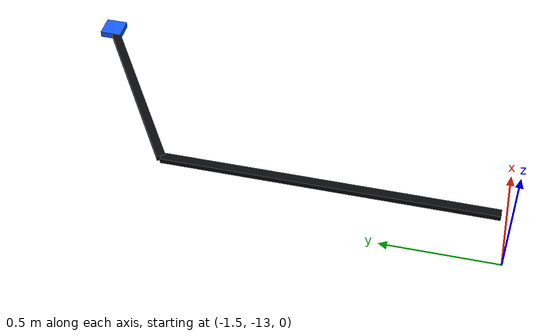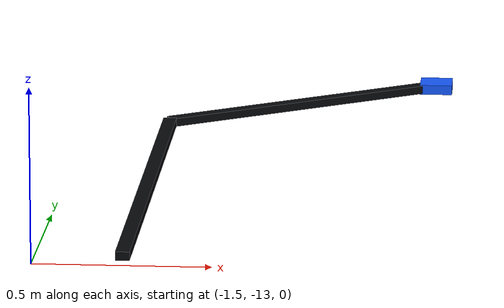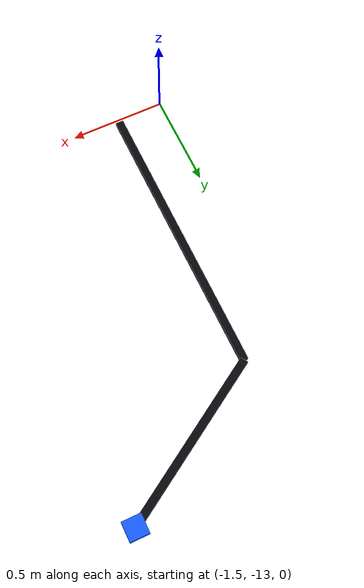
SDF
<sdf version="1.9"><model name="step2_entrance_blue_beacon"><static>true</static><allow_auto_disable>false</allow_auto_disable><pose>-0.45 -11.0 0.02 0 0 0</pose><link name="body"><gravity>false</gravity><inertial><mass>0.03</mass><inertia><ixx>.000016</ixx><iyy>.000016</iyy><izz>.000032</izz><ixy>0</ixy><ixz>0</ixz><iyz>0</iyz></inertia></inertial><visual name="tile"><pose>0 0 0 0 0 0</pose><geometry><box><size>0.1 0.1 0.03</size></box></geometry><material><ambient>0.08 0.35 1.0 1</ambient><diffuse>0.08 0.35 1.0 1</diffuse><emissive>0.052000000000000005 0.22749999999999998 0.65 1</emissive></material><cast_shadows>false</cast_shadows><transparency>0</transparency><visibility_flags>4294967295</visibility_flags></visual><visual name="cable_0"><pose>-0.8 -1.2375000000000007 0.0 0 0 1.5707963267948966</pose><geometry><box><size>1.4749999999999996 0.04 0.025</size></box></geometry><material><ambient>0.025 0.03 0.04 1</ambient><diffuse>0.025 0.03 0.04 1</diffuse><emissive>0.002 0.0024 0.0032 1</emissive></material><cast_shadows>false</cast_shadows><transparency>0</transparency><visibility_flags>4294967295</visibility_flags></visual><visual name="cable_1"><pose>-0.39999999999999997 -0.25 0.0 0 0 0.5585993153435624</pose><geometry><box><size>0.9433981132056605 0.04 0.025</size></box></geometry><material><ambient>0.025 0.03 0.04 1</ambient><diffuse>0.025 0.03 0.04 1</diffuse><emissive>0.002 0.0024 0.0032 1</emissive></material><cast_shadows>false</cast_shadows><transparency>0</transparency><visibility_flags>4294967295</visibility_flags></visual></link><plugin filename="gz-sim-pose-publisher-system" name="gz::sim::systems::PosePublisher"><publish_link_pose>false</publish_link_pose><publish_visual_pose>false</publish_visual_pose><publish_collision_pose>false</publish_collision_pose><publish_sensor_pose>false</publish_sensor_pose><publish_model_pose>true</publish_model_pose><publish_nested_model_pose>true</publish_nested_model_pose><static_publisher>false</static_publisher><use_pose_vector_msg>true</use_pose_vector_msg><update_frequency>10</update_frequency><topic>/model/step2_entrance_blue_beacon/pose</topic></plugin></model></sdf>
